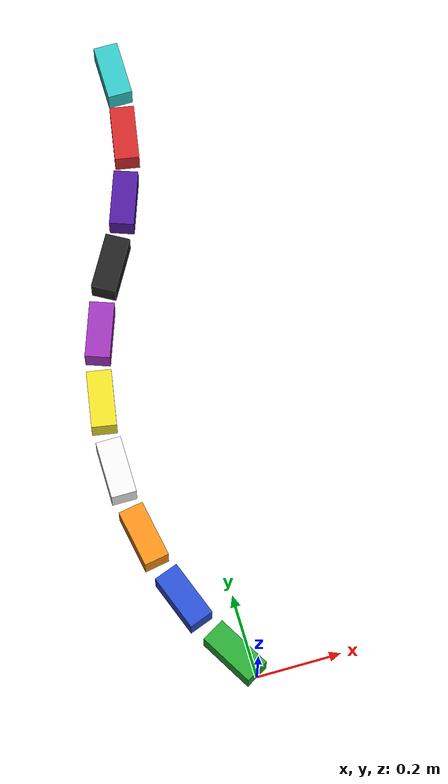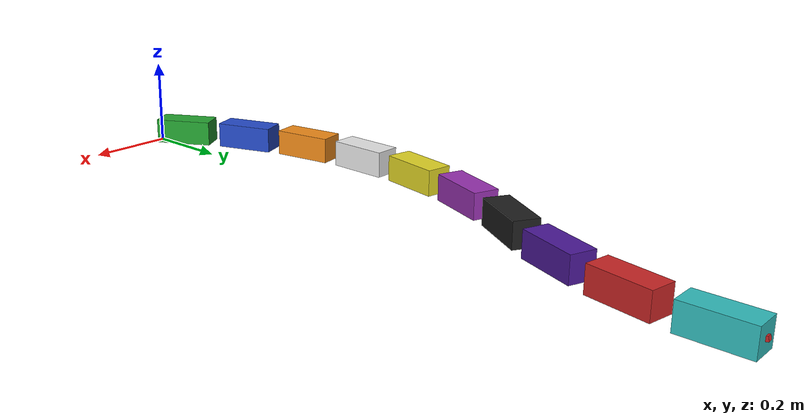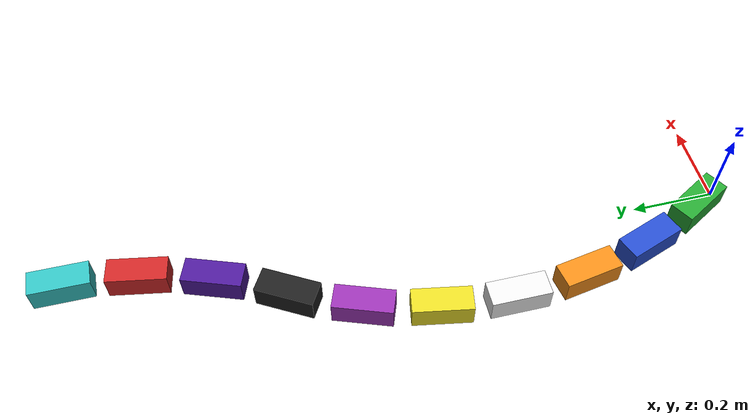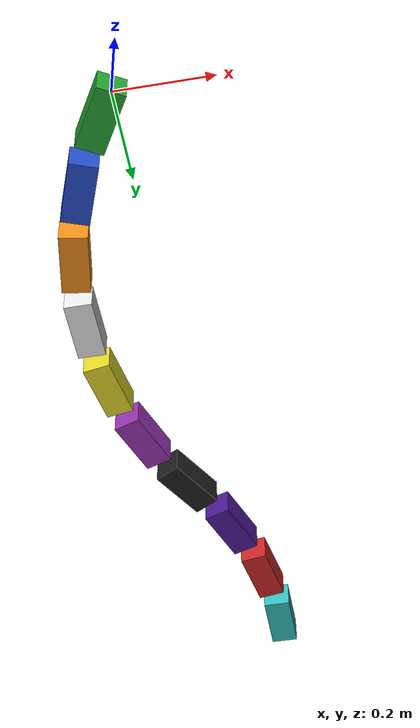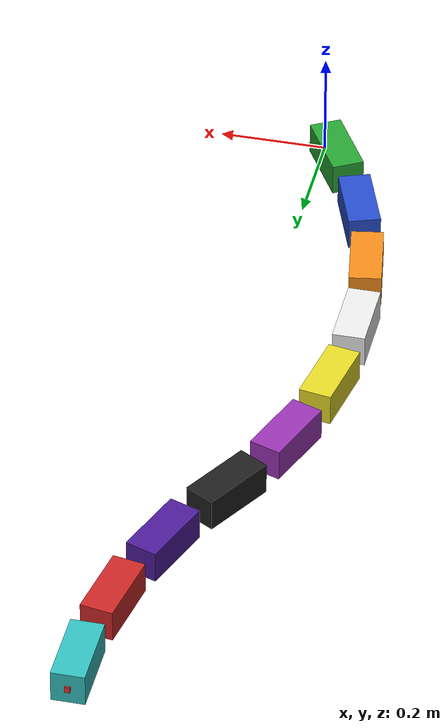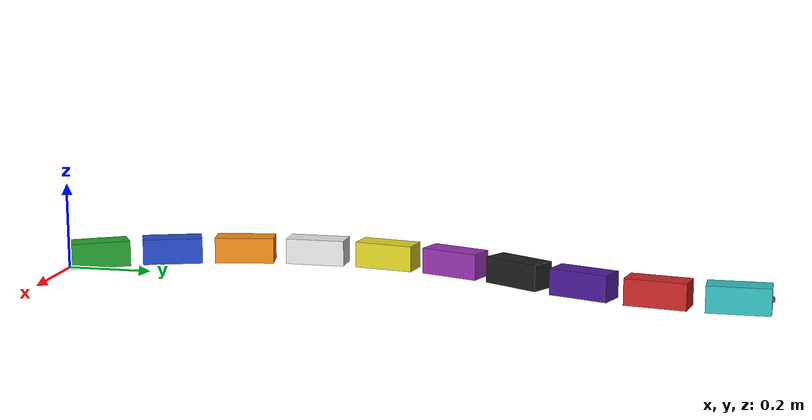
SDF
<sdf version='1.7'>
  <model name='snakebot'>
    <link name='base_link'>
      <inertial>
        <pose>-0.035 0.060622 0.03 0 -0 0</pose>
        <mass>1</mass>
        <inertia>
          <ixx>0.0016</ixx>
          <ixy>0.00057735</ixy>
          <ixz>2.1684e-19</ixz>
          <iyy>0.000933334</iyy>
          <iyz>0</iyz>
          <izz>0.00193333</izz>
        </inertia>
      </inertial>
      <collision name='base_link_fixed_joint_lump__link_1_collision_collision'>
        <pose>-0.035 0.060622 0.03 0 -0 0.523599</pose>
        <geometry>
          <box>
            <size>0.06 0.14 0.06</size>
          </box>
        </geometry>
        <surface>
          <contact>
            <ode/>
          </contact>
          <friction>
            <ode/>
          </friction>
        </surface>
      </collision>
      <visual name='base_link_fixed_joint_lump__link_1_visual'>
        <pose>-0.035 0.060622 0.03 0 -0 0.523599</pose>
        <geometry>
          <box>
            <size>0.06 0.14 0.06</size>
          </box>
        </geometry>
        <material>
          <script>
            <name>Gazebo/Green</name>
            <uri>file://media/materials/scripts/gazebo.material</uri>
          </script>
        </material>
      </visual>
      <sensor name='link1_contact_sensor' type='contact'>
        <always_on>1</always_on>
        <contact>
          <collision>link_1_collision_collision</collision>
          <topic>__default_topic__</topic>
        </contact>
        <update_rate>1</update_rate>
        <plugin name='link1_bumper_plugin' filename='libgazebo_ros_bumper.so'>
          <frame_name>world</frame_name>
          <bumperTopicName>link1_bumper</bumperTopicName>
          <ros>
            <remapping>bumper_states:=link1_bumper_states</remapping>
          </ros>
        </plugin>
        <pose>0 0 0 0 -0 0.523599</pose>
      </sensor>
    </link>
    <joint name='link_1_2_joint' type='revolute'>
      <pose relative_to='base_link'>-0.0875 0.151554 0 0 -0 0.349066</pose>
      <parent>base_link</parent>
      <child>link_2</child>
      <axis>
        <xyz>0 0 1</xyz>
        <limit>
          <lower>-0.785398</lower>
          <upper>0.785398</upper>
          <effort>1000</effort>
          <velocity>50</velocity>
        </limit>
        <dynamics>
          <spring_reference>0</spring_reference>
          <spring_stiffness>0</spring_stiffness>
        </dynamics>
      </axis>
    </joint>
    <link name='link_2'>
      <pose relative_to='link_1_2_joint'>0 0 0 0 -0 0</pose>
      <inertial>
        <pose>0 0.07 0.03 0 -0 0</pose>
        <mass>1</mass>
        <inertia>
          <ixx>0.00193333</ixx>
          <ixy>0</ixy>
          <ixz>0</ixz>
          <iyy>0.0006</iyy>
          <iyz>0</iyz>
          <izz>0.00193333</izz>
        </inertia>
      </inertial>
      <collision name='link_2_collision_collision'>
        <pose>0 0.07 0.03 0 -0 0</pose>
        <geometry>
          <box>
            <size>0.06 0.14 0.06</size>
          </box>
        </geometry>
        <surface>
          <contact>
            <ode/>
          </contact>
          <friction>
            <ode/>
          </friction>
        </surface>
      </collision>
      <visual name='link_2_visual'>
        <pose>0 0.07 0.03 0 -0 0</pose>
        <geometry>
          <box>
            <size>0.06 0.14 0.06</size>
          </box>
        </geometry>
        <material>
          <script>
            <name>Gazebo/Blue</name>
            <uri>file://media/materials/scripts/gazebo.material</uri>
          </script>
        </material>
      </visual>
      <sensor name='link2_contact_sensor' type='contact'>
        <always_on>1</always_on>
        <contact>
          <collision>link_2_collision_collision</collision>
          <topic>__default_topic__</topic>
        </contact>
        <update_rate>1</update_rate>
        <plugin name='link2_bumper_plugin' filename='libgazebo_ros_bumper.so'>
          <frame_name>world</frame_name>
          <bumperTopicName>link2_bumper</bumperTopicName>
          <ros>
            <remapping>bumper_states:=link2_bumper_states</remapping>
          </ros>
        </plugin>
      </sensor>
    </link>
    <joint name='link_2_3_joint' type='revolute'>
      <pose relative_to='link_2'>0 0.175 0 0 0 -0.174533</pose>
      <parent>link_2</parent>
      <child>link_3</child>
      <axis>
        <xyz>0 0 1</xyz>
        <limit>
          <lower>-0.785398</lower>
          <upper>0.785398</upper>
          <effort>1000</effort>
          <velocity>50</velocity>
        </limit>
        <dynamics>
          <spring_reference>0</spring_reference>
          <spring_stiffness>0</spring_stiffness>
        </dynamics>
      </axis>
    </joint>
    <link name='link_3'>
      <pose relative_to='link_2_3_joint'>0 0 0 0 -0 0</pose>
      <inertial>
        <pose>0 0.07 0.03 0 -0 0</pose>
        <mass>1</mass>
        <inertia>
          <ixx>0.00193333</ixx>
          <ixy>0</ixy>
          <ixz>0</ixz>
          <iyy>0.0006</iyy>
          <iyz>0</iyz>
          <izz>0.00193333</izz>
        </inertia>
      </inertial>
      <collision name='link_3_collision_collision'>
        <pose>0 0.07 0.03 0 -0 0</pose>
        <geometry>
          <box>
            <size>0.06 0.14 0.06</size>
          </box>
        </geometry>
        <surface>
          <contact>
            <ode/>
          </contact>
          <friction>
            <ode/>
          </friction>
        </surface>
      </collision>
      <visual name='link_3_visual'>
        <pose>0 0.07 0.03 0 -0 0</pose>
        <geometry>
          <box>
            <size>0.06 0.14 0.06</size>
          </box>
        </geometry>
        <material>
          <script>
            <name>Gazebo/Orange</name>
            <uri>file://media/materials/scripts/gazebo.material</uri>
          </script>
        </material>
      </visual>
      <sensor name='link3_contact_sensor' type='contact'>
        <always_on>1</always_on>
        <contact>
          <collision>link_3_collision_collision</collision>
          <topic>__default_topic__</topic>
        </contact>
        <update_rate>1</update_rate>
        <plugin name='link3_bumper_plugin' filename='libgazebo_ros_bumper.so'>
          <frame_name>world</frame_name>
          <bumperTopicName>link3_bumper</bumperTopicName>
          <ros>
            <remapping>bumper_states:=link3_bumper_states</remapping>
          </ros>
        </plugin>
      </sensor>
    </link>
    <joint name='link_3_4_joint' type='revolute'>
      <pose relative_to='link_3'>0 0.175 0 0 0 -0.174533</pose>
      <parent>link_3</parent>
      <child>link_4</child>
      <axis>
        <xyz>0 0 1</xyz>
        <limit>
          <lower>-0.785398</lower>
          <upper>0.785398</upper>
          <effort>1000</effort>
          <velocity>50</velocity>
        </limit>
        <dynamics>
          <spring_reference>0</spring_reference>
          <spring_stiffness>0</spring_stiffness>
        </dynamics>
      </axis>
    </joint>
    <link name='link_4'>
      <pose relative_to='link_3_4_joint'>0 0 0 0 -0 0</pose>
      <inertial>
        <pose>0 0.07 0.03 0 -0 0</pose>
        <mass>1</mass>
        <inertia>
          <ixx>0.00193333</ixx>
          <ixy>0</ixy>
          <ixz>0</ixz>
          <iyy>0.0006</iyy>
          <iyz>0</iyz>
          <izz>0.00193333</izz>
        </inertia>
      </inertial>
      <collision name='link_4_collision_collision'>
        <pose>0 0.07 0.03 0 -0 0</pose>
        <geometry>
          <box>
            <size>0.06 0.14 0.06</size>
          </box>
        </geometry>
        <surface>
          <contact>
            <ode/>
          </contact>
          <friction>
            <ode/>
          </friction>
        </surface>
      </collision>
      <visual name='link_4_visual'>
        <pose>0 0.07 0.03 0 -0 0</pose>
        <geometry>
          <box>
            <size>0.06 0.14 0.06</size>
          </box>
        </geometry>
        <material>
          <script>
            <name>Gazebo/White</name>
            <uri>file://media/materials/scripts/gazebo.material</uri>
          </script>
        </material>
      </visual>
      <sensor name='link4_contact_sensor' type='contact'>
        <always_on>1</always_on>
        <contact>
          <collision>link_4_collision_collision</collision>
          <topic>__default_topic__</topic>
        </contact>
        <update_rate>1</update_rate>
        <plugin name='link4_bumper_plugin' filename='libgazebo_ros_bumper.so'>
          <frame_name>world</frame_name>
          <bumperTopicName>link4_bumper</bumperTopicName>
          <ros>
            <remapping>bumper_states:=link4_bumper_states</remapping>
          </ros>
        </plugin>
      </sensor>
    </link>
    <joint name='link_4_5_joint' type='revolute'>
      <pose relative_to='link_4'>0 0.175 0 0 0 -0.174533</pose>
      <parent>link_4</parent>
      <child>link_5</child>
      <axis>
        <xyz>0 0 1</xyz>
        <limit>
          <lower>-0.785398</lower>
          <upper>0.785398</upper>
          <effort>1000</effort>
          <velocity>50</velocity>
        </limit>
        <dynamics>
          <spring_reference>0</spring_reference>
          <spring_stiffness>0</spring_stiffness>
        </dynamics>
      </axis>
    </joint>
    <link name='link_5'>
      <pose relative_to='link_4_5_joint'>0 0 0 0 -0 0</pose>
      <inertial>
        <pose>0 0.07 0.03 0 -0 0</pose>
        <mass>1</mass>
        <inertia>
          <ixx>0.00193333</ixx>
          <ixy>0</ixy>
          <ixz>0</ixz>
          <iyy>0.0006</iyy>
          <iyz>0</iyz>
          <izz>0.00193333</izz>
        </inertia>
      </inertial>
      <collision name='link_5_collision_collision'>
        <pose>0 0.07 0.03 0 -0 0</pose>
        <geometry>
          <box>
            <size>0.06 0.14 0.06</size>
          </box>
        </geometry>
        <surface>
          <contact>
            <ode/>
          </contact>
          <friction>
            <ode/>
          </friction>
        </surface>
      </collision>
      <visual name='link_5_visual'>
        <pose>0 0.07 0.03 0 -0 0</pose>
        <geometry>
          <box>
            <size>0.06 0.14 0.06</size>
          </box>
        </geometry>
        <material>
          <script>
            <name>Gazebo/Yellow</name>
            <uri>file://media/materials/scripts/gazebo.material</uri>
          </script>
        </material>
      </visual>
      <sensor name='link5_contact_sensor' type='contact'>
        <always_on>1</always_on>
        <contact>
          <collision>link_5_collision_collision</collision>
          <topic>__default_topic__</topic>
        </contact>
        <update_rate>1</update_rate>
        <plugin name='link5_bumper_plugin' filename='libgazebo_ros_bumper.so'>
          <frame_name>world</frame_name>
          <bumperTopicName>link5_bumper</bumperTopicName>
          <ros>
            <remapping>bumper_states:=link5_bumper_states</remapping>
          </ros>
        </plugin>
      </sensor>
    </link>
    <joint name='link_5_6_joint' type='revolute'>
      <pose relative_to='link_5'>0 0.175 0 0 0 -0.174533</pose>
      <parent>link_5</parent>
      <child>link_6</child>
      <axis>
        <xyz>0 0 1</xyz>
        <limit>
          <lower>-0.785398</lower>
          <upper>0.785398</upper>
          <effort>1000</effort>
          <velocity>50</velocity>
        </limit>
        <dynamics>
          <spring_reference>0</spring_reference>
          <spring_stiffness>0</spring_stiffness>
        </dynamics>
      </axis>
    </joint>
    <link name='link_6'>
      <pose relative_to='link_5_6_joint'>0 0 0 0 -0 0</pose>
      <inertial>
        <pose>0 0.07 0.03 0 -0 0</pose>
        <mass>1</mass>
        <inertia>
          <ixx>0.00193333</ixx>
          <ixy>0</ixy>
          <ixz>0</ixz>
          <iyy>0.0006</iyy>
          <iyz>0</iyz>
          <izz>0.00193333</izz>
        </inertia>
      </inertial>
      <collision name='link_6_collision_collision'>
        <pose>0 0.07 0.03 0 -0 0</pose>
        <geometry>
          <box>
            <size>0.06 0.14 0.06</size>
          </box>
        </geometry>
        <surface>
          <contact>
            <ode/>
          </contact>
          <friction>
            <ode/>
          </friction>
        </surface>
      </collision>
      <visual name='link_6_visual'>
        <pose>0 0.07 0.03 0 -0 0</pose>
        <geometry>
          <box>
            <size>0.06 0.14 0.06</size>
          </box>
        </geometry>
        <material>
          <script>
            <name>Gazebo/Purple</name>
            <uri>file://media/materials/scripts/gazebo.material</uri>
          </script>
        </material>
      </visual>
      <sensor name='link6_contact_sensor' type='contact'>
        <always_on>1</always_on>
        <contact>
          <collision>link_6_collision_collision</collision>
          <topic>__default_topic__</topic>
        </contact>
        <update_rate>1</update_rate>
        <plugin name='link6_bumper_plugin' filename='libgazebo_ros_bumper.so'>
          <frame_name>world</frame_name>
          <bumperTopicName>link6_bumper</bumperTopicName>
          <ros>
            <remapping>bumper_states:=link6_bumper_states</remapping>
          </ros>
        </plugin>
      </sensor>
    </link>
    <joint name='link_6_7_joint' type='revolute'>
      <pose relative_to='link_6'>0 0.175 0 0 0 -0.174533</pose>
      <parent>link_6</parent>
      <child>link_7</child>
      <axis>
        <xyz>0 0 1</xyz>
        <limit>
          <lower>-0.785398</lower>
          <upper>0.785398</upper>
          <effort>1000</effort>
          <velocity>50</velocity>
        </limit>
        <dynamics>
          <spring_reference>0</spring_reference>
          <spring_stiffness>0</spring_stiffness>
        </dynamics>
      </axis>
    </joint>
    <link name='link_7'>
      <pose relative_to='link_6_7_joint'>0 0 0 0 -0 0</pose>
      <inertial>
        <pose>0 0.07 0.03 0 -0 0</pose>
        <mass>1</mass>
        <inertia>
          <ixx>0.00193333</ixx>
          <ixy>0</ixy>
          <ixz>0</ixz>
          <iyy>0.0006</iyy>
          <iyz>0</iyz>
          <izz>0.00193333</izz>
        </inertia>
      </inertial>
      <collision name='link_7_collision_collision'>
        <pose>0 0.07 0.03 0 -0 0</pose>
        <geometry>
          <box>
            <size>0.06 0.14 0.06</size>
          </box>
        </geometry>
        <surface>
          <contact>
            <ode/>
          </contact>
          <friction>
            <ode/>
          </friction>
        </surface>
      </collision>
      <visual name='link_7_visual'>
        <pose>0 0.07 0.03 0 -0 0</pose>
        <geometry>
          <box>
            <size>0.06 0.14 0.06</size>
          </box>
        </geometry>
        <material>
          <script>
            <name>Gazebo/Black</name>
            <uri>file://media/materials/scripts/gazebo.material</uri>
          </script>
        </material>
      </visual>
      <sensor name='link7_contact_sensor' type='contact'>
        <always_on>1</always_on>
        <contact>
          <collision>link_7_collision_collision</collision>
          <topic>__default_topic__</topic>
        </contact>
        <update_rate>1</update_rate>
        <plugin name='link7_bumper_plugin' filename='libgazebo_ros_bumper.so'>
          <frame_name>world</frame_name>
          <bumperTopicName>link7_bumper</bumperTopicName>
          <ros>
            <remapping>bumper_states:=link7_bumper_states</remapping>
          </ros>
        </plugin>
      </sensor>
    </link>
    <joint name='link_7_8_joint' type='revolute'>
      <pose relative_to='link_7'>0 0.175 0 0 -0 0.174533</pose>
      <parent>link_7</parent>
      <child>link_8</child>
      <axis>
        <xyz>0 0 1</xyz>
        <limit>
          <lower>-0.785398</lower>
          <upper>0.785398</upper>
          <effort>1000</effort>
          <velocity>50</velocity>
        </limit>
        <dynamics>
          <spring_reference>0</spring_reference>
          <spring_stiffness>0</spring_stiffness>
        </dynamics>
      </axis>
    </joint>
    <link name='link_8'>
      <pose relative_to='link_7_8_joint'>0 0 0 0 -0 0</pose>
      <inertial>
        <pose>0 0.07 0.03 0 -0 0</pose>
        <mass>1</mass>
        <inertia>
          <ixx>0.00193333</ixx>
          <ixy>0</ixy>
          <ixz>0</ixz>
          <iyy>0.0006</iyy>
          <iyz>0</iyz>
          <izz>0.00193333</izz>
        </inertia>
      </inertial>
      <collision name='link_8_collision_collision'>
        <pose>0 0.07 0.03 0 -0 0</pose>
        <geometry>
          <box>
            <size>0.06 0.14 0.06</size>
          </box>
        </geometry>
        <surface>
          <contact>
            <ode/>
          </contact>
          <friction>
            <ode/>
          </friction>
        </surface>
      </collision>
      <visual name='link_8_visual'>
        <pose>0 0.07 0.03 0 -0 0</pose>
        <geometry>
          <box>
            <size>0.06 0.14 0.06</size>
          </box>
        </geometry>
        <material>
          <script>
            <name>Gazebo/Indigo</name>
            <uri>file://media/materials/scripts/gazebo.material</uri>
          </script>
        </material>
      </visual>
      <sensor name='link8_contact_sensor' type='contact'>
        <always_on>1</always_on>
        <contact>
          <collision>link_8_collision_collision</collision>
          <topic>__default_topic__</topic>
        </contact>
        <update_rate>1</update_rate>
        <plugin name='link8_bumper_plugin' filename='libgazebo_ros_bumper.so'>
          <frame_name>world</frame_name>
          <bumperTopicName>link8_bumper</bumperTopicName>
          <ros>
            <remapping>bumper_states:=link8_bumper_states</remapping>
          </ros>
        </plugin>
      </sensor>
    </link>
    <joint name='link_8_9_joint' type='revolute'>
      <pose relative_to='link_8'>0 0.175 0 0 -0 0.174533</pose>
      <parent>link_8</parent>
      <child>link_9</child>
      <axis>
        <xyz>0 0 1</xyz>
        <limit>
          <lower>-0.785398</lower>
          <upper>0.785398</upper>
          <effort>1000</effort>
          <velocity>50</velocity>
        </limit>
        <dynamics>
          <spring_reference>0</spring_reference>
          <spring_stiffness>0</spring_stiffness>
        </dynamics>
      </axis>
    </joint>
    <link name='link_9'>
      <pose relative_to='link_8_9_joint'>0 0 0 0 -0 0</pose>
      <inertial>
        <pose>0 0.07 0.03 0 -0 0</pose>
        <mass>1</mass>
        <inertia>
          <ixx>0.00193333</ixx>
          <ixy>0</ixy>
          <ixz>0</ixz>
          <iyy>0.0006</iyy>
          <iyz>0</iyz>
          <izz>0.00193333</izz>
        </inertia>
      </inertial>
      <collision name='link_9_collision_collision'>
        <pose>0 0.07 0.03 0 -0 0</pose>
        <geometry>
          <box>
            <size>0.06 0.14 0.06</size>
          </box>
        </geometry>
        <surface>
          <contact>
            <ode/>
          </contact>
          <friction>
            <ode/>
          </friction>
        </surface>
      </collision>
      <visual name='link_9_visual'>
        <pose>0 0.07 0.03 0 -0 0</pose>
        <geometry>
          <box>
            <size>0.06 0.14 0.06</size>
          </box>
        </geometry>
        <material>
          <script>
            <name>Gazebo/RedBright</name>
            <uri>file://media/materials/scripts/gazebo.material</uri>
          </script>
        </material>
      </visual>
      <sensor name='link9_contact_sensor' type='contact'>
        <always_on>1</always_on>
        <contact>
          <collision>link_9_collision_collision</collision>
          <topic>__default_topic__</topic>
        </contact>
        <update_rate>1</update_rate>
        <plugin name='link9_bumper_plugin' filename='libgazebo_ros_bumper.so'>
          <frame_name>world</frame_name>
          <bumperTopicName>link9_bumper</bumperTopicName>
          <ros>
            <remapping>bumper_states:=link9_bumper_states</remapping>
          </ros>
        </plugin>
      </sensor>
    </link>
    <joint name='link_9_10_joint' type='revolute'>
      <pose relative_to='link_9'>0 0.175 0 0 -0 0.174533</pose>
      <parent>link_9</parent>
      <child>link_10</child>
      <axis>
        <xyz>0 0 1</xyz>
        <limit>
          <lower>-0.785398</lower>
          <upper>0.785398</upper>
          <effort>1000</effort>
          <velocity>50</velocity>
        </limit>
        <dynamics>
          <spring_reference>0</spring_reference>
          <spring_stiffness>0</spring_stiffness>
        </dynamics>
      </axis>
    </joint>
    <link name='link_10'>
      <pose relative_to='link_9_10_joint'>0 0 0 0 -0 0</pose>
      <inertial>
        <pose>0 0.07 0.03 0 -0 0</pose>
        <mass>1</mass>
        <inertia>
          <ixx>0.00193333</ixx>
          <ixy>0</ixy>
          <ixz>0</ixz>
          <iyy>0.0006</iyy>
          <iyz>0</iyz>
          <izz>0.00193333</izz>
        </inertia>
      </inertial>
      <collision name='link_10_collision_collision'>
        <pose>0 0.07 0.03 0 -0 0</pose>
        <geometry>
          <box>
            <size>0.06 0.14 0.06</size>
          </box>
        </geometry>
        <surface>
          <contact>
            <ode/>
          </contact>
          <friction>
            <ode/>
          </friction>
        </surface>
      </collision>
      <visual name='link_10_visual'>
        <pose>0 0.07 0.03 0 -0 0</pose>
        <geometry>
          <box>
            <size>0.06 0.14 0.06</size>
          </box>
        </geometry>
        <material>
          <script>
            <name>Gazebo/Turquoise</name>
            <uri>file://media/materials/scripts/gazebo.material</uri>
          </script>
        </material>
      </visual>
      <visual name='link_10_fixed_joint_lump__camera_link_visual_1'>
        <pose>0 0.14 0.03 0 -0.174533 1.5708</pose>
        <geometry>
          <box>
            <size>0.01 0.01 0.01</size>
          </box>
        </geometry>
        <material>
          <script>
            <name>Gazebo/Red</name>
            <uri>file://media/materials/scripts/gazebo.material</uri>
          </script>
        </material>
      </visual>
      <sensor name='link10_contact_sensor' type='contact'>
        <always_on>1</always_on>
        <contact>
          <collision>link_10_collision_collision</collision>
          <topic>__default_topic__</topic>
        </contact>
        <update_rate>1</update_rate>
        <plugin name='link10_bumper_plugin' filename='libgazebo_ros_bumper.so'>
          <frame_name>world</frame_name>
          <bumperTopicName>link10_bumper</bumperTopicName>
          <ros>
            <remapping>bumper_states:=link10_bumper_states</remapping>
          </ros>
        </plugin>
      </sensor>
      <sensor name='camera' type='camera'>
        <visualize>1</visualize>
        <update_rate>10</update_rate>
        <camera>
          <horizontal_fov>1.089</horizontal_fov>
          <image>
            <format>R8G8B8</format>
            <width>640</width>
            <height>480</height>
          </image>
          <clip>
            <near>0.05</near>
            <far>8</far>
          </clip>
        </camera>
        <plugin name='camera_controller' filename='libgazebo_ros_camera.so'>
          <frame_name>camera_link_optical</frame_name>
        </plugin>
        <pose>0 0.14 0.03 0 -0.174533 1.5708</pose>
      </sensor>
    </link>
    <static>0</static>
    <plugin name='gazebo_ros_planar_move' filename='libgazebo_ros_planar_move.so'>
      <update_rate>100</update_rate>
      <publish_rate>10</publish_rate>
      <publish_odom>1</publish_odom>
      <publish_odom_tf>1</publish_odom_tf>
      <odometry_frame>odom</odometry_frame>
      <robot_base_frame>base_link</robot_base_frame>
    </plugin>
    <plugin name='gazebo_ros2_control' filename='libgazebo_ros2_control.so'>
      <parameters>/home/mohit/GITHUBRepos/snake-robot-sim/install/snake_bot/share/snake_bot/config/controllers.yaml</parameters>
    </plugin>
    <plugin name='ft_sensor_joint_1' filename='libgazebo_ros_ft_sensor.so'>
      <updateRate>100.0</updateRate>
      <remapping>wrench:=joint_1</remapping>
      <joint_name>link_1_2_joint</joint_name>
      <gaussian_noise>0.01</gaussian_noise>
      <update_rate>1</update_rate>
    </plugin>
    <plugin name='ft_sensor_joint_2' filename='libgazebo_ros_ft_sensor.so'>
      <updateRate>100.0</updateRate>
      <remapping>wrench:=joint_2</remapping>
      <joint_name>link_2_3_joint</joint_name>
      <gaussian_noise>0.01</gaussian_noise>
      <update_rate>1</update_rate>
    </plugin>
    <plugin name='ft_sensor_joint_3' filename='libgazebo_ros_ft_sensor.so'>
      <updateRate>100.0</updateRate>
      <remapping>wrench:=joint_3</remapping>
      <joint_name>link_3_4_joint</joint_name>
      <gaussian_noise>0.01</gaussian_noise>
      <update_rate>1</update_rate>
    </plugin>
    <plugin name='ft_sensor_joint_4' filename='libgazebo_ros_ft_sensor.so'>
      <updateRate>100.0</updateRate>
      <remapping>wrench:=joint_4</remapping>
      <joint_name>link_4_5_joint</joint_name>
      <gaussian_noise>0.01</gaussian_noise>
      <update_rate>1</update_rate>
    </plugin>
    <plugin name='ft_sensor_joint_5' filename='libgazebo_ros_ft_sensor.so'>
      <updateRate>100.0</updateRate>
      <remapping>wrench:=joint_5</remapping>
      <joint_name>link_5_6_joint</joint_name>
      <gaussian_noise>0.01</gaussian_noise>
      <update_rate>1</update_rate>
    </plugin>
    <plugin name='ft_sensor_joint_6' filename='libgazebo_ros_ft_sensor.so'>
      <updateRate>100.0</updateRate>
      <remapping>wrench:=joint_6</remapping>
      <joint_name>link_6_7_joint</joint_name>
      <gaussian_noise>0.01</gaussian_noise>
      <update_rate>1</update_rate>
    </plugin>
    <plugin name='ft_sensor_joint_7' filename='libgazebo_ros_ft_sensor.so'>
      <updateRate>100.0</updateRate>
      <remapping>wrench:=joint_7</remapping>
      <joint_name>link_7_8_joint</joint_name>
      <gaussian_noise>0.01</gaussian_noise>
      <update_rate>1</update_rate>
    </plugin>
    <plugin name='ft_sensor_joint_8' filename='libgazebo_ros_ft_sensor.so'>
      <updateRate>100.0</updateRate>
      <remapping>wrench:=joint_8</remapping>
      <joint_name>link_8_9_joint</joint_name>
      <gaussian_noise>0.01</gaussian_noise>
      <update_rate>1</update_rate>
    </plugin>
    <plugin name='ft_sensor_joint_9' filename='libgazebo_ros_ft_sensor.so'>
      <updateRate>100.0</updateRate>
      <remapping>wrench:=joint_9</remapping>
      <joint_name>link_9_10_joint</joint_name>
      <gaussian_noise>0.01</gaussian_noise>
      <update_rate>1</update_rate>
    </plugin>
  </model>
</sdf>
